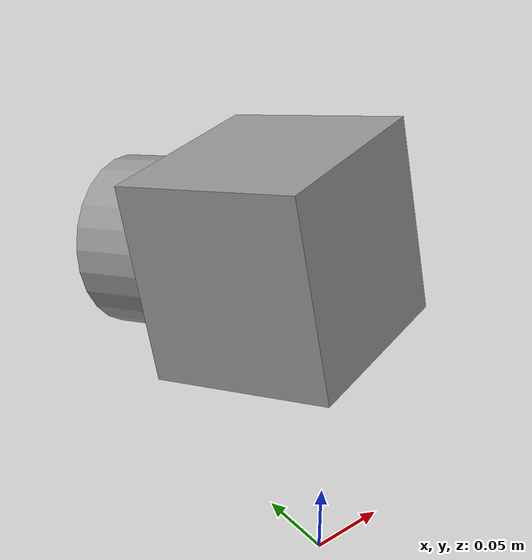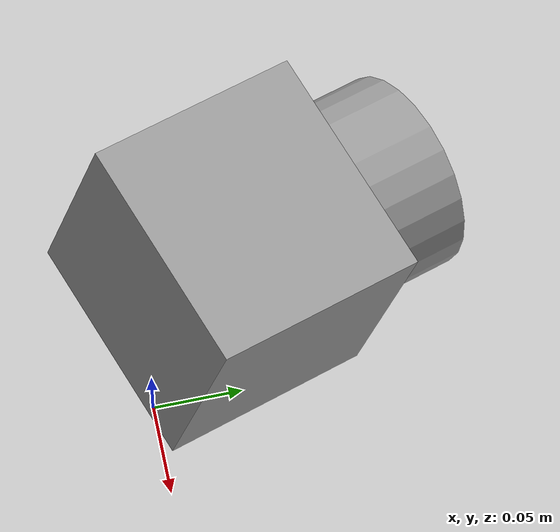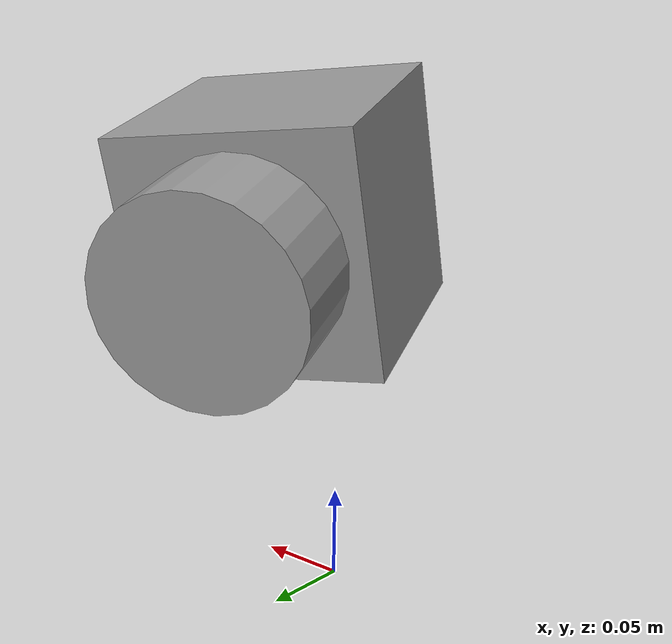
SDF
<?xml version='1.0'?>
<sdf version='1.6'>
  <model name='stadium_camera'>
    <pose frame=''>0 0 0 -0.20 -0.047 -0.188</pose>
    <link name='camera_link'>
      <pose frame=''>0 0 0.215506 -0.04 0 0.55</pose>
      <inertial>
        <mass>4.77215</mass>
        <inertia>
          <ixx>0.0113382</ixx>
          <ixy>0</ixy>
          <ixz>0</ixz>
          <iyy>0.0120839</iyy>
          <iyz>0</iyz>
          <izz>0.0115436</izz>
        </inertia>
        <pose frame=''>0 0 0 0 -0 0</pose>
      </inertial>
      <self_collide>0</self_collide>
      <kinematic>0</kinematic>
      <sensor name='camera_stadium' type='camera'>
        <pose frame=''>0 0.1 0 0 -0 1.57</pose>
        <camera name='__default__'>
          <horizontal_fov>1.047</horizontal_fov>
          <image>
            <width>320</width>
            <height>240</height>
          </image>
          <clip>
            <near>0.1</near>
            <far>100</far>
          </clip>
        </camera>
        <always_on>1</always_on>
        <update_rate>30</update_rate>
        <visualize>1</visualize>
        <plugin name='camera_controller' filename='libgazebo_ros_camera.so'>
          <alwaysOn>true</alwaysOn>
          <updateRate>0.0</updateRate>
          <cameraName>camera_stadium</cameraName>
          <imageTopicName>image_raw</imageTopicName>
          <cameraInfoTopicName>camera_info</cameraInfoTopicName>
          <frameName>camera_link</frameName>
          <hackBaseline>0.07</hackBaseline>
          <distortionK1>0.0</distortionK1>
          <distortionK2>0.0</distortionK2>
          <distortionK3>0.0</distortionK3>
          <distortionT1>0.0</distortionT1>
          <distortionT2>0.0</distortionT2>
        </plugin>
      </sensor>
      <visual name='ModelPreview_0::camera_link::visual_1'>
        <pose frame=''>0 0.08 0 1.57 -0 0</pose>
        <geometry>
          <cylinder>
            <radius>0.052595</radius>
            <length>0.06</length>
          </cylinder>
        </geometry>
        <material>
          <lighting>1</lighting>
          <script>
            <uri>file://media/materials/scripts/gazebo.material</uri>
            <name>Gazebo/Grey</name>
          </script>
          <ambient>0.3 0.3 0.3 1</ambient>
          <diffuse>0.7 0.7 0.7 1</diffuse>
          <specular>0.01 0.01 0.01 1</specular>
          <emissive>0 0 0 1</emissive>
          <shader type='vertex'>
            <normal_map>__default__</normal_map>
          </shader>
        </material>
        <cast_shadows>1</cast_shadows>
        <transparency>0</transparency>
      </visual>
      <visual name='visual'>
        <pose frame=''>0 0 0 0 -0 0</pose>
        <geometry>
          <box>
            <size>0.124303 0.116517 0.122208</size>
          </box>
        </geometry>
        <material>
          <lighting>1</lighting>
          <script>
            <uri>file://media/materials/scripts/gazebo.material</uri>
            <name>Gazebo/Grey</name>
          </script>
          <ambient>0.3 0.3 0.3 1</ambient>
          <diffuse>0.7 0.7 0.7 1</diffuse>
          <specular>0.01 0.01 0.01 1</specular>
          <emissive>0 0 0 1</emissive>
          <shader type='vertex'>
            <normal_map>__default__</normal_map>
          </shader>
        </material>
        <cast_shadows>1</cast_shadows>
        <transparency>0</transparency>
      </visual>
      <collision name='collision_1'>
        <laser_retro>0</laser_retro>
        <max_contacts>10</max_contacts>
        <pose frame=''>0 0.08 0 1.57 -0 0</pose>
        <geometry>
          <cylinder>
            <radius>0.052595</radius>
            <length>0.06</length>
          </cylinder>
        </geometry>
        <surface>
          <friction>
            <ode>
              <mu>1</mu>
              <mu2>1</mu2>
              <fdir1>0 0 0</fdir1>
              <slip1>0</slip1>
              <slip2>0</slip2>
            </ode>
            <torsional>
              <coefficient>1</coefficient>
              <patch_radius>0</patch_radius>
              <surface_radius>0</surface_radius>
              <use_patch_radius>1</use_patch_radius>
              <ode>
                <slip>0</slip>
              </ode>
            </torsional>
          </friction>
          <bounce>
            <restitution_coefficient>0</restitution_coefficient>
            <threshold>1e+06</threshold>
          </bounce>
          <contact>
            <collide_without_contact>0</collide_without_contact>
            <collide_without_contact_bitmask>1</collide_without_contact_bitmask>
            <collide_bitmask>1</collide_bitmask>
            <ode>
              <soft_cfm>0</soft_cfm>
              <soft_erp>0.2</soft_erp>
              <kp>1e+13</kp>
              <kd>1</kd>
              <max_vel>0.01</max_vel>
              <min_depth>0</min_depth>
            </ode>
            <bullet>
              <split_impulse>1</split_impulse>
              <split_impulse_penetration_threshold>-0.01</split_impulse_penetration_threshold>
              <soft_cfm>0</soft_cfm>
              <soft_erp>0.2</soft_erp>
              <kp>1e+13</kp>
              <kd>1</kd>
            </bullet>
          </contact>
        </surface>
      </collision>
    </link>
    <static>1</static>
    <allow_auto_disable>1</allow_auto_disable>
  </model>
</sdf>
